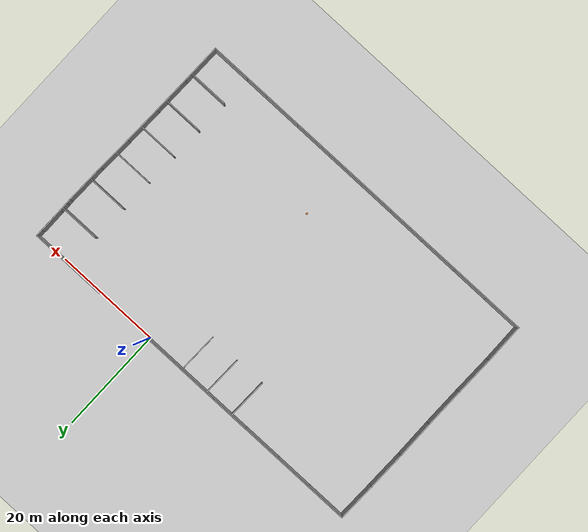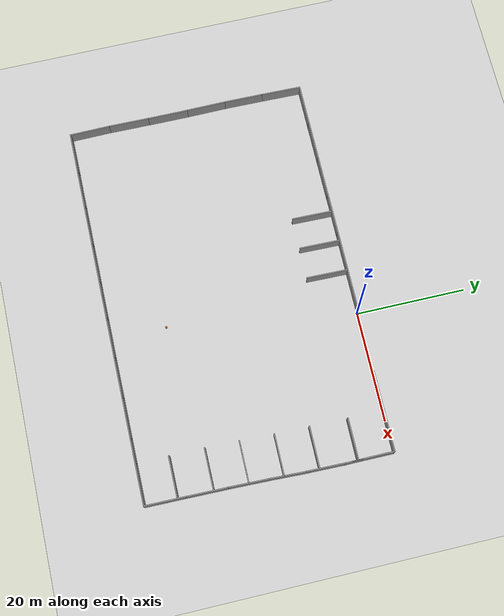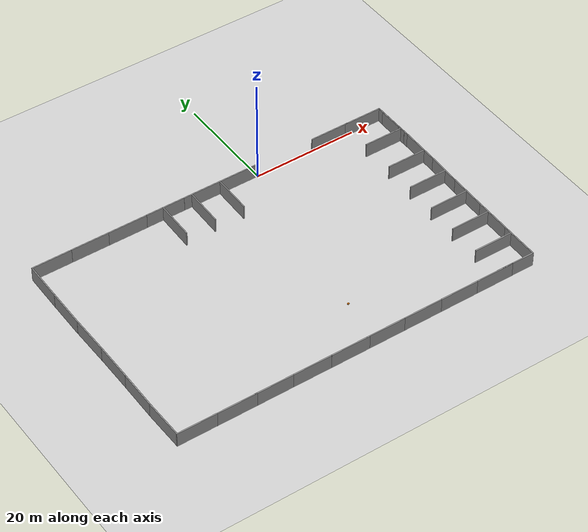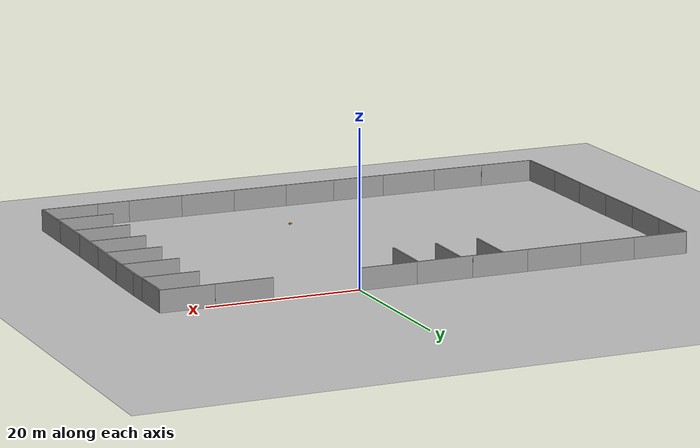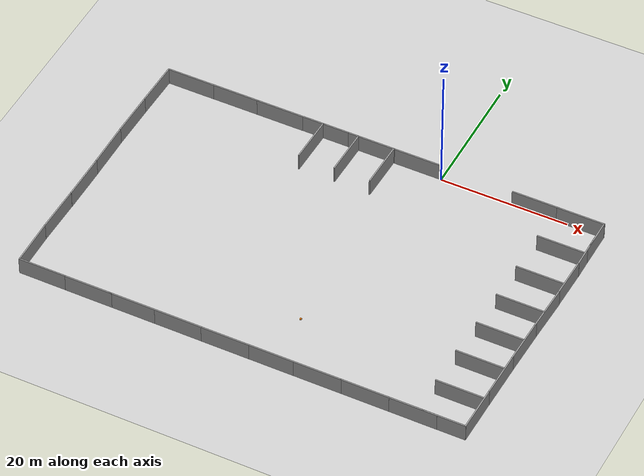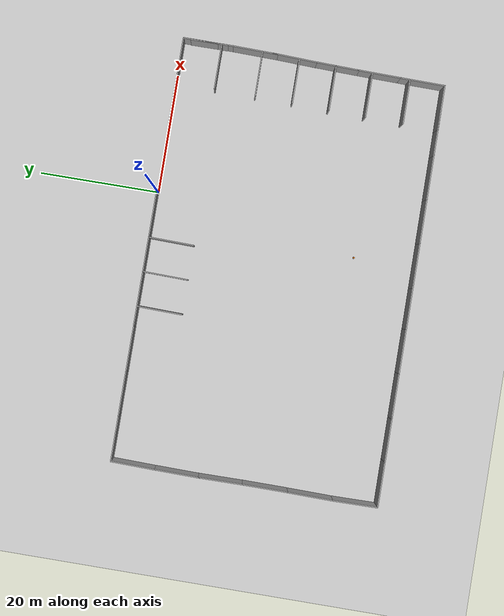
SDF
<sdf version="1.7">
 <world name="default">
  <light name="sun" type="directional">
   <pose>0 0 10 0 -0 0</pose>
   <diffuse>0.8 0.8 0.8 1</diffuse>
   <specular>0.2 0.2 0.2 1</specular>
   <attenuation>
    <range>1000</range>
    <constant>0.9</constant>
    <linear>0.01</linear>
    <quadratic>0.001</quadratic>
   </attenuation>
   <direction>-0.5 0.1 -0.9</direction>
   <spot><inner_angle>0</inner_angle><outer_angle>0</outer_angle><falloff>0</falloff></spot>
  </light>
  <model name="ground_plane">
   <static>1</static>
   <link name="link">
    <collision name="collision">
     <geometry><plane><normal>0 0 1</normal><size>100 100</size></plane></geometry>
     <surface><friction><ode><mu>100</mu><mu2>50</mu2></ode></friction></surface>
    </collision>
    <visual name="visual">
     <cast_shadows>0</cast_shadows>
     <geometry><plane><normal>0 0 1</normal><size>100 100</size></plane></geometry>
     <material>
      <script><uri>file://media/materials/scripts/gazebo.material</uri><name>Gazebo/Grey</name></script>
     </material>
    </visual>
   </link>
  </model>
  <gravity>0 0 -9.8</gravity>
  <magnetic_field>6e-06 2.3e-05 -4.2e-05</magnetic_field>
  <atmosphere type="adiabatic"/>
  <physics type="ode">
   <max_step_size>0.001</max_step_size>
   <real_time_factor>1</real_time_factor>
   <real_time_update_rate>1000</real_time_update_rate>
  </physics>
  <scene><ambient>0.4 0.4 0.4 1</ambient><background>0.7 0.7 0.7 1</background><shadows>1</shadows></scene>
  <audio><device>default</device></audio>
  <spherical_coordinates>
   <surface_model>EARTH_WGS84</surface_model>
   <latitude_deg>0</latitude_deg>
   <longitude_deg>0</longitude_deg>
   <elevation>0</elevation>
   <heading_deg>0</heading_deg>
  </spherical_coordinates>
  <model name="grey_wall">
   <static>1</static>
   <link name="link">
    <pose>0 0 1.4 0 -0 0</pose>
    <collision name="collision"><geometry><box><size>7.5 0.2 2.8</size></box></geometry></collision>
    <visual name="visual">
     <cast_shadows>0</cast_shadows>
     <geometry><box><size>7.5 0.2 2.8</size></box></geometry>
     <material>
      <script>
       <uri>model://grey_wall/materials/scripts</uri>
       <uri>model://grey_wall/materials/textures</uri>
       <name>vrc/grey_wall</name>
      </script>
     </material>
    </visual>
   </link>
   <pose>15.0322 -0.046799 0 0 -0 0</pose>
  </model>
  <model name="grey_wall_0">
   <static>1</static>
   <link name="link">
    <pose>0 0 1.4 0 -0 0</pose>
    <collision name="collision"><geometry><box><size>7.5 0.2 2.8</size></box></geometry></collision>
    <visual name="visual">
     <cast_shadows>0</cast_shadows>
     <geometry><box><size>7.5 0.2 2.8</size></box></geometry>
     <material>
      <script>
       <uri>model://grey_wall/materials/scripts</uri>
       <uri>model://grey_wall/materials/textures</uri>
       <name>vrc/grey_wall</name>
      </script>
     </material>
    </visual>
   </link>
   <pose>22.1133 -0.054691 0 0 -0 0</pose>
  </model>
  <model name="grey_wall_1">
   <static>1</static>
   <link name="link">
    <pose>0 0 1.4 0 -0 0</pose>
    <collision name="collision"><geometry><box><size>7.5 0.2 2.8</size></box></geometry></collision>
    <visual name="visual">
     <cast_shadows>0</cast_shadows>
     <geometry><box><size>7.5 0.2 2.8</size></box></geometry>
     <material>
      <script>
       <uri>model://grey_wall/materials/scripts</uri>
       <uri>model://grey_wall/materials/textures</uri>
       <name>vrc/grey_wall</name>
      </script>
     </material>
    </visual>
   </link>
   <pose>-3.81044 0.066326 0 0 -0 0</pose>
  </model>
  <model name="grey_wall_2">
   <static>1</static>
   <link name="link">
    <pose>0 0 1.4 0 -0 0</pose>
    <collision name="collision"><geometry><box><size>7.5 0.2 2.8</size></box></geometry></collision>
    <visual name="visual">
     <cast_shadows>0</cast_shadows>
     <geometry><box><size>7.5 0.2 2.8</size></box></geometry>
     <material>
      <script>
       <uri>model://grey_wall/materials/scripts</uri>
       <uri>model://grey_wall/materials/textures</uri>
       <name>vrc/grey_wall</name>
      </script>
     </material>
    </visual>
   </link>
   <pose>-11.3103 0.075244 0 0 -0 0</pose>
  </model>
  <model name="grey_wall_3">
   <static>1</static>
   <link name="link">
    <pose>0 0 1.4 0 -0 0</pose>
    <collision name="collision"><geometry><box><size>7.5 0.2 2.8</size></box></geometry></collision>
    <visual name="visual">
     <cast_shadows>0</cast_shadows>
     <geometry><box><size>7.5 0.2 2.8</size></box></geometry>
     <material>
      <script>
       <uri>model://grey_wall/materials/scripts</uri>
       <uri>model://grey_wall/materials/textures</uri>
       <name>vrc/grey_wall</name>
      </script>
     </material>
    </visual>
   </link>
   <pose>-18.8122 0.079753 0 0 -0 0</pose>
  </model>
  <model name="grey_wall_4">
   <static>1</static>
   <link name="link">
    <pose>0 0 1.4 0 -0 0</pose>
    <collision name="collision"><geometry><box><size>7.5 0.2 2.8</size></box></geometry></collision>
    <visual name="visual">
     <cast_shadows>0</cast_shadows>
     <geometry><box><size>7.5 0.2 2.8</size></box></geometry>
     <material>
      <script>
       <uri>model://grey_wall/materials/scripts</uri>
       <uri>model://grey_wall/materials/textures</uri>
       <name>vrc/grey_wall</name>
      </script>
     </material>
    </visual>
   </link>
   <pose>-26.2991 0.06013 0 0 -0 0</pose>
  </model>
  <model name="grey_wall_5">
   <static>1</static>
   <link name="link">
    <pose>0 0 1.4 0 -0 0</pose>
    <collision name="collision"><geometry><box><size>7.5 0.2 2.8</size></box></geometry></collision>
    <visual name="visual">
     <cast_shadows>0</cast_shadows>
     <geometry><box><size>7.5 0.2 2.8</size></box></geometry>
     <material>
      <script>
       <uri>model://grey_wall/materials/scripts</uri>
       <uri>model://grey_wall/materials/textures</uri>
       <name>vrc/grey_wall</name>
      </script>
     </material>
    </visual>
   </link>
   <pose>-33.6204 0.060884 0 0 -0 0</pose>
  </model>
  <model name="grey_wall_6">
   <static>1</static>
   <link name="link">
    <pose>0 0 1.4 0 -0 0</pose>
    <collision name="collision"><geometry><box><size>7.5 0.2 2.8</size></box></geometry></collision>
    <visual name="visual">
     <cast_shadows>0</cast_shadows>
     <geometry><box><size>7.5 0.2 2.8</size></box></geometry>
     <material>
      <script>
       <uri>model://grey_wall/materials/scripts</uri>
       <uri>model://grey_wall/materials/textures</uri>
       <name>vrc/grey_wall</name>
      </script>
     </material>
    </visual>
   </link>
   <pose>-40.9914 0.052124 0 0 -0 0</pose>
  </model>
  <model name="grey_wall_7">
   <static>1</static>
   <link name="link">
    <pose>0 0 1.4 0 -0 0</pose>
    <collision name="collision"><geometry><box><size>7.5 0.2 2.8</size></box></geometry></collision>
    <visual name="visual">
     <cast_shadows>0</cast_shadows>
     <geometry><box><size>7.5 0.2 2.8</size></box></geometry>
     <material>
      <script>
       <uri>model://grey_wall/materials/scripts</uri>
       <uri>model://grey_wall/materials/textures</uri>
       <name>vrc/grey_wall</name>
      </script>
     </material>
    </visual>
   </link>
   <pose>-44.9496 -10.9203 0 0 0 -1.58488</pose>
  </model>
  <model name="grey_wall_8">
   <static>1</static>
   <link name="link">
    <pose>0 0 1.4 0 -0 0</pose>
    <collision name="collision"><geometry><box><size>7.5 0.2 2.8</size></box></geometry></collision>
    <visual name="visual">
     <cast_shadows>0</cast_shadows>
     <geometry><box><size>7.5 0.2 2.8</size></box></geometry>
     <material>
      <script>
       <uri>model://grey_wall/materials/scripts</uri>
       <uri>model://grey_wall/materials/textures</uri>
       <name>vrc/grey_wall</name>
      </script>
     </material>
    </visual>
   </link>
   <pose>-44.9397 -25.3907 0 0 0 -1.57569</pose>
  </model>
  <model name="grey_wall_9">
   <static>1</static>
   <link name="link">
    <pose>0 0 1.4 0 -0 0</pose>
    <collision name="collision"><geometry><box><size>7.5 0.2 2.8</size></box></geometry></collision>
    <visual name="visual">
     <cast_shadows>0</cast_shadows>
     <geometry><box><size>7.5 0.2 2.8</size></box></geometry>
     <material>
      <script>
       <uri>model://grey_wall/materials/scripts</uri>
       <uri>model://grey_wall/materials/textures</uri>
       <name>vrc/grey_wall</name>
      </script>
     </material>
    </visual>
   </link>
   <pose>-44.8309 -3.63413 0 0 0 -1.59164</pose>
  </model>
  <model name="grey_wall_10">
   <static>1</static>
   <link name="link">
    <pose>0 0 1.4 0 -0 0</pose>
    <collision name="collision"><geometry><box><size>7.5 0.2 2.8</size></box></geometry></collision>
    <visual name="visual">
     <cast_shadows>0</cast_shadows>
     <geometry><box><size>7.5 0.2 2.8</size></box></geometry>
     <material>
      <script>
       <uri>model://grey_wall/materials/scripts</uri>
       <uri>model://grey_wall/materials/textures</uri>
       <name>vrc/grey_wall</name>
      </script>
     </material>
    </visual>
   </link>
   <pose>-44.96 -18.1413 0 0 0 -1.56302</pose>
  </model>
  <model name="grey_wall_11">
   <static>1</static>
   <link name="link">
    <pose>0 0 1.4 0 -0 0</pose>
    <collision name="collision"><geometry><box><size>7.5 0.2 2.8</size></box></geometry></collision>
    <visual name="visual">
     <cast_shadows>0</cast_shadows>
     <geometry><box><size>7.5 0.2 2.8</size></box></geometry>
     <material>
      <script>
       <uri>model://grey_wall/materials/scripts</uri>
       <uri>model://grey_wall/materials/textures</uri>
       <name>vrc/grey_wall</name>
      </script>
     </material>
    </visual>
   </link>
   <pose>-45.0177 -32.7999 0 0 -0 1.55716</pose>
  </model>
  <model name="grey_wall_12">
   <static>1</static>
   <link name="link">
    <pose>0 0 1.4 0 -0 0</pose>
    <collision name="collision"><geometry><box><size>7.5 0.2 2.8</size></box></geometry></collision>
    <visual name="visual">
     <cast_shadows>0</cast_shadows>
     <geometry><box><size>7.5 0.2 2.8</size></box></geometry>
     <material>
      <script>
       <uri>model://grey_wall/materials/scripts</uri>
       <uri>model://grey_wall/materials/textures</uri>
       <name>vrc/grey_wall</name>
      </script>
     </material>
    </visual>
   </link>
   <pose>-45.0243 -40.0833 0 0 0 -1.5578</pose>
  </model>
  <model name="grey_wall_13">
   <static>1</static>
   <link name="link">
    <pose>0 0 1.4 0 -0 0</pose>
    <collision name="collision"><geometry><box><size>7.5 0.2 2.8</size></box></geometry></collision>
    <visual name="visual">
     <cast_shadows>0</cast_shadows>
     <geometry><box><size>7.5 0.2 2.8</size></box></geometry>
     <material>
      <script>
       <uri>model://grey_wall/materials/scripts</uri>
       <uri>model://grey_wall/materials/textures</uri>
       <name>vrc/grey_wall</name>
      </script>
     </material>
    </visual>
   </link>
   <pose>-41.3239 -43.9219 0 0 -0 0</pose>
  </model>
  <model name="grey_wall_14">
   <static>1</static>
   <link name="link">
    <pose>0 0 1.4 0 -0 0</pose>
    <collision name="collision"><geometry><box><size>7.5 0.2 2.8</size></box></geometry></collision>
    <visual name="visual">
     <cast_shadows>0</cast_shadows>
     <geometry><box><size>7.5 0.2 2.8</size></box></geometry>
     <material>
      <script>
       <uri>model://grey_wall/materials/scripts</uri>
       <uri>model://grey_wall/materials/textures</uri>
       <name>vrc/grey_wall</name>
      </script>
     </material>
    </visual>
   </link>
   <pose>-33.8425 -43.9356 0 0 -0 0</pose>
  </model>
  <model name="grey_wall_15">
   <static>1</static>
   <link name="link">
    <pose>0 0 1.4 0 -0 0</pose>
    <collision name="collision"><geometry><box><size>7.5 0.2 2.8</size></box></geometry></collision>
    <visual name="visual">
     <cast_shadows>0</cast_shadows>
     <geometry><box><size>7.5 0.2 2.8</size></box></geometry>
     <material>
      <script>
       <uri>model://grey_wall/materials/scripts</uri>
       <uri>model://grey_wall/materials/textures</uri>
       <name>vrc/grey_wall</name>
      </script>
     </material>
    </visual>
   </link>
   <pose>-26.7796 -43.9342 0 0 -0 0</pose>
  </model>
  <model name="grey_wall_16">
   <static>1</static>
   <link name="link">
    <pose>0 0 1.4 0 -0 0</pose>
    <collision name="collision"><geometry><box><size>7.5 0.2 2.8</size></box></geometry></collision>
    <visual name="visual">
     <cast_shadows>0</cast_shadows>
     <geometry><box><size>7.5 0.2 2.8</size></box></geometry>
     <material>
      <script>
       <uri>model://grey_wall/materials/scripts</uri>
       <uri>model://grey_wall/materials/textures</uri>
       <name>vrc/grey_wall</name>
      </script>
     </material>
    </visual>
   </link>
   <pose>-19.505 -43.9367 0 0 -0 0</pose>
  </model>
  <model name="grey_wall_17">
   <static>1</static>
   <link name="link">
    <pose>0 0 1.4 0 -0 0</pose>
    <collision name="collision"><geometry><box><size>7.5 0.2 2.8</size></box></geometry></collision>
    <visual name="visual">
     <cast_shadows>0</cast_shadows>
     <geometry><box><size>7.5 0.2 2.8</size></box></geometry>
     <material>
      <script>
       <uri>model://grey_wall/materials/scripts</uri>
       <uri>model://grey_wall/materials/textures</uri>
       <name>vrc/grey_wall</name>
      </script>
     </material>
    </visual>
   </link>
   <pose>-12.133 -43.9467 0 0 -0 0</pose>
  </model>
  <model name="grey_wall_18">
   <static>1</static>
   <link name="link">
    <pose>0 0 1.4 0 -0 0</pose>
    <collision name="collision"><geometry><box><size>7.5 0.2 2.8</size></box></geometry></collision>
    <visual name="visual">
     <cast_shadows>0</cast_shadows>
     <geometry><box><size>7.5 0.2 2.8</size></box></geometry>
     <material>
      <script>
       <uri>model://grey_wall/materials/scripts</uri>
       <uri>model://grey_wall/materials/textures</uri>
       <name>vrc/grey_wall</name>
      </script>
     </material>
    </visual>
   </link>
   <pose>-5.17967 -43.942 0 0 -0 0</pose>
  </model>
  <model name="grey_wall_19">
   <static>1</static>
   <link name="link">
    <pose>0 0 1.4 0 -0 0</pose>
    <collision name="collision"><geometry><box><size>7.5 0.2 2.8</size></box></geometry></collision>
    <visual name="visual">
     <cast_shadows>0</cast_shadows>
     <geometry><box><size>7.5 0.2 2.8</size></box></geometry>
     <material>
      <script>
       <uri>model://grey_wall/materials/scripts</uri>
       <uri>model://grey_wall/materials/textures</uri>
       <name>vrc/grey_wall</name>
      </script>
     </material>
    </visual>
   </link>
   <pose>2.24043 -43.9352 0 0 -0 0</pose>
  </model>
  <model name="grey_wall_20">
   <static>1</static>
   <link name="link">
    <pose>0 0 1.4 0 -0 0</pose>
    <collision name="collision"><geometry><box><size>7.5 0.2 2.8</size></box></geometry></collision>
    <visual name="visual">
     <cast_shadows>0</cast_shadows>
     <geometry><box><size>7.5 0.2 2.8</size></box></geometry>
     <material>
      <script>
       <uri>model://grey_wall/materials/scripts</uri>
       <uri>model://grey_wall/materials/textures</uri>
       <name>vrc/grey_wall</name>
      </script>
     </material>
    </visual>
   </link>
   <pose>9.60015 -43.9275 0 0 -0 0</pose>
  </model>
  <model name="grey_wall_21">
   <static>1</static>
   <link name="link">
    <pose>0 0 1.4 0 -0 0</pose>
    <collision name="collision"><geometry><box><size>7.5 0.2 2.8</size></box></geometry></collision>
    <visual name="visual">
     <cast_shadows>0</cast_shadows>
     <geometry><box><size>7.5 0.2 2.8</size></box></geometry>
     <material>
      <script>
       <uri>model://grey_wall/materials/scripts</uri>
       <uri>model://grey_wall/materials/textures</uri>
       <name>vrc/grey_wall</name>
      </script>
     </material>
    </visual>
   </link>
   <pose>16.9142 -43.923 0 0 -0 0</pose>
  </model>
  <model name="grey_wall_22">
   <static>1</static>
   <link name="link">
    <pose>0 0 1.4 0 -0 0</pose>
    <collision name="collision"><geometry><box><size>7.5 0.2 2.8</size></box></geometry></collision>
    <visual name="visual">
     <cast_shadows>0</cast_shadows>
     <geometry><box><size>7.5 0.2 2.8</size></box></geometry>
     <material>
      <script>
       <uri>model://grey_wall/materials/scripts</uri>
       <uri>model://grey_wall/materials/textures</uri>
       <name>vrc/grey_wall</name>
      </script>
     </material>
    </visual>
   </link>
   <pose>21.2873 -43.9116 0 0 -0 0</pose>
  </model>
  <model name="grey_wall_23">
   <static>1</static>
   <link name="link">
    <pose>0 0 1.4 0 -0 0</pose>
    <collision name="collision"><geometry><box><size>7.5 0.2 2.8</size></box></geometry></collision>
    <visual name="visual">
     <cast_shadows>0</cast_shadows>
     <geometry><box><size>7.5 0.2 2.8</size></box></geometry>
     <material>
      <script>
       <uri>model://grey_wall/materials/scripts</uri>
       <uri>model://grey_wall/materials/textures</uri>
       <name>vrc/grey_wall</name>
      </script>
     </material>
    </visual>
   </link>
   <pose>25.0077 -40.2521 0 0 0 -1.58292</pose>
  </model>
  <model name="grey_wall_24">
   <static>1</static>
   <link name="link">
    <pose>0 0 1.4 0 -0 0</pose>
    <collision name="collision"><geometry><box><size>7.5 0.2 2.8</size></box></geometry></collision>
    <visual name="visual">
     <cast_shadows>0</cast_shadows>
     <geometry><box><size>7.5 0.2 2.8</size></box></geometry>
     <material>
      <script>
       <uri>model://grey_wall/materials/scripts</uri>
       <uri>model://grey_wall/materials/textures</uri>
       <name>vrc/grey_wall</name>
      </script>
     </material>
    </visual>
   </link>
   <pose>25.1189 -32.9921 0 0 0 -1.5876</pose>
  </model>
  <model name="grey_wall_25">
   <static>1</static>
   <link name="link">
    <pose>0 0 1.4 0 -0 0</pose>
    <collision name="collision"><geometry><box><size>7.5 0.2 2.8</size></box></geometry></collision>
    <visual name="visual">
     <cast_shadows>0</cast_shadows>
     <geometry><box><size>7.5 0.2 2.8</size></box></geometry>
     <material>
      <script>
       <uri>model://grey_wall/materials/scripts</uri>
       <uri>model://grey_wall/materials/textures</uri>
       <name>vrc/grey_wall</name>
      </script>
     </material>
    </visual>
   </link>
   <pose>25.4883 -18.7407 0 0 0 -1.61009</pose>
  </model>
  <model name="grey_wall_26">
   <static>1</static>
   <link name="link">
    <pose>0 0 1.4 0 -0 0</pose>
    <collision name="collision"><geometry><box><size>7.5 0.2 2.8</size></box></geometry></collision>
    <visual name="visual">
     <cast_shadows>0</cast_shadows>
     <geometry><box><size>7.5 0.2 2.8</size></box></geometry>
     <material>
      <script>
       <uri>model://grey_wall/materials/scripts</uri>
       <uri>model://grey_wall/materials/textures</uri>
       <name>vrc/grey_wall</name>
      </script>
     </material>
    </visual>
   </link>
   <pose>25.6675 -12.1685 0 0 0 -1.59098</pose>
  </model>
  <model name="grey_wall_27">
   <static>1</static>
   <link name="link">
    <pose>0 0 1.4 0 -0 0</pose>
    <collision name="collision"><geometry><box><size>7.5 0.2 2.8</size></box></geometry></collision>
    <visual name="visual">
     <cast_shadows>0</cast_shadows>
     <geometry><box><size>7.5 0.2 2.8</size></box></geometry>
     <material>
      <script>
       <uri>model://grey_wall/materials/scripts</uri>
       <uri>model://grey_wall/materials/textures</uri>
       <name>vrc/grey_wall</name>
      </script>
     </material>
    </visual>
   </link>
   <pose>25.2654 -25.8422 -0 0 0 -1.59708</pose>
  </model>
  <model name="grey_wall_28">
   <static>1</static>
   <link name="link">
    <pose>0 0 1.4 0 -0 0</pose>
    <collision name="collision"><geometry><box><size>7.5 0.2 2.8</size></box></geometry></collision>
    <visual name="visual">
     <cast_shadows>0</cast_shadows>
     <geometry><box><size>7.5 0.2 2.8</size></box></geometry>
     <material>
      <script>
       <uri>model://grey_wall/materials/scripts</uri>
       <uri>model://grey_wall/materials/textures</uri>
       <name>vrc/grey_wall</name>
      </script>
     </material>
    </visual>
   </link>
   <pose>25.7264 -5.00568 0 0 0 -1.56465</pose>
  </model>
  <model name="grey_wall_29">
   <static>1</static>
   <link name="link">
    <pose>0 0 1.4 0 -0 0</pose>
    <collision name="collision"><geometry><box><size>7.5 0.2 2.8</size></box></geometry></collision>
    <visual name="visual">
     <cast_shadows>0</cast_shadows>
     <geometry><box><size>7.5 0.2 2.8</size></box></geometry>
     <material>
      <script>
       <uri>model://grey_wall/materials/scripts</uri>
       <uri>model://grey_wall/materials/textures</uri>
       <name>vrc/grey_wall</name>
      </script>
     </material>
    </visual>
   </link>
   <pose>25.7392 -3.78871 0 0 0 -1.5746</pose>
  </model>
  <model name="grey_wall_0_clone">
   <static>1</static>
   <link name="link">
    <pose>0 0 1.4 0 -0 0</pose>
    <collision name="collision"><geometry><box><size>7.5 0.2 2.8</size></box></geometry></collision>
    <visual name="visual">
     <cast_shadows>0</cast_shadows>
     <geometry><box><size>7.5 0.2 2.8</size></box></geometry>
     <material>
      <script>
       <uri>model://grey_wall/materials/scripts</uri>
       <uri>model://grey_wall/materials/textures</uri>
       <name>vrc/grey_wall</name>
      </script>
     </material>
    </visual>
   </link>
   <pose>21.9872 -6.49149 0 0 -0 0</pose>
  </model>
  <model name="grey_wall_0_clone_0">
   <static>1</static>
   <link name="link">
    <pose>0 0 1.4 0 -0 0</pose>
    <collision name="collision"><geometry><box><size>7.5 0.2 2.8</size></box></geometry></collision>
    <visual name="visual">
     <cast_shadows>0</cast_shadows>
     <geometry><box><size>7.5 0.2 2.8</size></box></geometry>
     <material>
      <script>
       <uri>model://grey_wall/materials/scripts</uri>
       <uri>model://grey_wall/materials/textures</uri>
       <name>vrc/grey_wall</name>
      </script>
     </material>
    </visual>
   </link>
   <pose>21.8589 -13.3275 0 0 -0 0</pose>
  </model>
  <model name="grey_wall_0_clone_1">
   <static>1</static>
   <link name="link">
    <pose>0 0 1.4 0 -0 0</pose>
    <collision name="collision"><geometry><box><size>7.5 0.2 2.8</size></box></geometry></collision>
    <visual name="visual">
     <cast_shadows>0</cast_shadows>
     <geometry><box><size>7.5 0.2 2.8</size></box></geometry>
     <material>
      <script>
       <uri>model://grey_wall/materials/scripts</uri>
       <uri>model://grey_wall/materials/textures</uri>
       <name>vrc/grey_wall</name>
      </script>
     </material>
    </visual>
   </link>
   <pose>21.7444 -19.5518 0 0 -0 0</pose>
  </model>
  <model name="grey_wall_0_clone_2">
   <static>1</static>
   <link name="link">
    <pose>0 0 1.4 0 -0 0</pose>
    <collision name="collision"><geometry><box><size>7.5 0.2 2.8</size></box></geometry></collision>
    <visual name="visual">
     <cast_shadows>0</cast_shadows>
     <geometry><box><size>7.5 0.2 2.8</size></box></geometry>
     <material>
      <script>
       <uri>model://grey_wall/materials/scripts</uri>
       <uri>model://grey_wall/materials/textures</uri>
       <name>vrc/grey_wall</name>
      </script>
     </material>
    </visual>
   </link>
   <pose>21.5344 -25.7051 0 0 -0 0</pose>
  </model>
  <model name="grey_wall_0_clone_3">
   <static>1</static>
   <link name="link">
    <pose>0 0 1.4 0 -0 0</pose>
    <collision name="collision"><geometry><box><size>7.5 0.2 2.8</size></box></geometry></collision>
    <visual name="visual">
     <cast_shadows>0</cast_shadows>
     <geometry><box><size>7.5 0.2 2.8</size></box></geometry>
     <material>
      <script>
       <uri>model://grey_wall/materials/scripts</uri>
       <uri>model://grey_wall/materials/textures</uri>
       <name>vrc/grey_wall</name>
      </script>
     </material>
    </visual>
   </link>
   <pose>21.3631 -31.8085 0 0 -0 0</pose>
  </model>
  <model name="grey_wall_0_clone_4">
   <static>1</static>
   <link name="link">
    <pose>0 0 1.4 0 -0 0</pose>
    <collision name="collision"><geometry><box><size>7.5 0.2 2.8</size></box></geometry></collision>
    <visual name="visual">
     <cast_shadows>0</cast_shadows>
     <geometry><box><size>7.5 0.2 2.8</size></box></geometry>
     <material>
      <script>
       <uri>model://grey_wall/materials/scripts</uri>
       <uri>model://grey_wall/materials/textures</uri>
       <name>vrc/grey_wall</name>
      </script>
     </material>
    </visual>
   </link>
   <pose>21.2929 -38.0926 0 0 -0 0</pose>
  </model>
  <model name="grey_wall_9_clone">
   <static>1</static>
   <link name="link">
    <pose>0 0 1.4 0 -0 0</pose>
    <collision name="collision"><geometry><box><size>7.5 0.2 2.8</size></box></geometry></collision>
    <visual name="visual">
     <cast_shadows>0</cast_shadows>
     <geometry><box><size>7.5 0.2 2.8</size></box></geometry>
     <material>
      <script>
       <uri>model://grey_wall/materials/scripts</uri>
       <uri>model://grey_wall/materials/textures</uri>
       <name>vrc/grey_wall</name>
      </script>
     </material>
    </visual>
   </link>
   <pose>-7.82082 -3.70591 0 0 0 -1.59164</pose>
  </model>
  <model name="grey_wall_9_clone_0">
   <static>1</static>
   <link name="link">
    <pose>0 0 1.4 0 -0 0</pose>
    <collision name="collision"><geometry><box><size>7.5 0.2 2.8</size></box></geometry></collision>
    <visual name="visual">
     <cast_shadows>0</cast_shadows>
     <geometry><box><size>7.5 0.2 2.8</size></box></geometry>
     <material>
      <script>
       <uri>model://grey_wall/materials/scripts</uri>
       <uri>model://grey_wall/materials/textures</uri>
       <name>vrc/grey_wall</name>
      </script>
     </material>
    </visual>
   </link>
   <pose>-13.5441 -3.6438 0 0 0 -1.59164</pose>
  </model>
  <model name="grey_wall_9_clone_1">
   <static>1</static>
   <link name="link">
    <pose>0 0 1.4 0 -0 0</pose>
    <collision name="collision"><geometry><box><size>7.5 0.2 2.8</size></box></geometry></collision>
    <visual name="visual">
     <cast_shadows>0</cast_shadows>
     <geometry><box><size>7.5 0.2 2.8</size></box></geometry>
     <material>
      <script>
       <uri>model://grey_wall/materials/scripts</uri>
       <uri>model://grey_wall/materials/textures</uri>
       <name>vrc/grey_wall</name>
      </script>
     </material>
    </visual>
   </link>
   <pose>-19.302 -3.68215 0 0 0 -1.59164</pose>
  </model>
  <model name="my_bot">
   <link name="base_link">
    <inertial>
     <pose>0.055714 0 0.078571 0 -0 0</pose>
     <mass>0.7</mass>
     <inertia>
      <ixx>0.0064169</ixx>
      <ixy>0</ixy>
      <ixz>0.00118929</ixz>
      <iyy>0.00745405</iyy>
      <iyz>0</iyz>
      <izz>0.00876214</izz>
     </inertia>
    </inertial>
    <collision name="base_link_fixed_joint_lump__chassis_collision">
     <pose>0.05 0 0.075 0 -0 0</pose>
     <geometry><box><size>0.3 0.3 0.15</size></box></geometry>
    </collision>
    <collision name="base_link_fixed_joint_lump__caster_wheel_collision_1">
     <pose>0.14 0 0 0 -0 0</pose>
     <geometry><sphere><radius>0.05</radius></sphere></geometry>
     <surface><friction><ode><mu>0.001</mu><mu2>0.001</mu2></ode></friction></surface>
    </collision>
    <collision name="base_link_fixed_joint_lump__laser_frame_collision_2">
     <pose>0 0 0.175 0 -0 0</pose>
     <geometry><cylinder><length>0.04</length><radius>0.05</radius></cylinder></geometry>
    </collision>
    <visual name="base_link_fixed_joint_lump__chassis_visual">
     <pose>0.05 0 0.075 0 -0 0</pose>
     <geometry><box><size>0.3 0.3 0.15</size></box></geometry>
     <material>
      <script><name>Gazebo/Orange</name><uri>file://media/materials/scripts/gazebo.material</uri></script>
     </material>
    </visual>
    <visual name="base_link_fixed_joint_lump__camera_link_visual_1">
     <pose>0.205 0 0.08 0 -0 0</pose>
     <geometry><box><size>0.01 0.03 0.03</size></box></geometry>
     <material>
      <script><name>Gazebo/Red</name><uri>file://media/materials/scripts/gazebo.material</uri></script>
     </material>
    </visual>
    <visual name="base_link_fixed_joint_lump__caster_wheel_visual_2">
     <pose>0.14 0 0 0 -0 0</pose>
     <geometry><sphere><radius>0.05</radius></sphere></geometry>
     <material>
      <script><name>Gazebo/White</name><uri>file://media/materials/scripts/gazebo.material</uri></script>
     </material>
    </visual>
    <visual name="base_link_fixed_joint_lump__laser_frame_visual_3">
     <pose>0 0 0.175 0 -0 0</pose>
     <geometry><cylinder><length>0.04</length><radius>0.05</radius></cylinder></geometry>
     <material>
      <script><name>Gazebo/Red</name><uri>file://media/materials/scripts/gazebo.material</uri></script>
     </material>
    </visual>
    <sensor name="camera" type="camera">
     <visualize>1</visualize>
     <update_rate>10</update_rate>
     <camera>
      <horizontal_fov>1.089</horizontal_fov>
      <image><format>R8G8B8</format><width>640</width><height>480</height></image>
      <clip><near>0.05</near><far>15</far></clip>
     </camera>
     <plugin name="camera_controller" filename="libgazebo_ros_camera.so">
      <frame_name>camera_link_optical</frame_name>
     </plugin>
     <pose>0.205 0 0.08 0 -0 0</pose>
    </sensor>
    <sensor name="laser" type="ray">
     <visualize>1</visualize>
     <update_rate>10</update_rate>
     <ray>
      <scan>
       <horizontal>
        <samples>360</samples>
        <min_angle>-3.14</min_angle>
        <max_angle>3.14</max_angle>
        <resolution>1</resolution>
       </horizontal>
       <vertical><samples>1</samples><min_angle>0</min_angle><max_angle>0</max_angle></vertical>
      </scan>
      <range><min>0.3</min><max>12</max></range>
     </ray>
     <plugin name="laser_controller" filename="libgazebo_ros_ray_sensor.so">
      <ros><argument>~/out:=scan</argument></ros>
      <output_type>sensor_msgs/LaserScan</output_type>
      <frame_name>laser_frame</frame_name>
     </plugin>
     <pose>0 0 0.175 0 -0 0</pose>
    </sensor>
   </link>
   <joint name="left_wheel_joint" type="revolute">
    <pose relative_to="base_link">0 0.175 0 -1.5708 0 0</pose>
    <parent>base_link</parent>
    <child>left_wheel</child>
    <axis>
     <xyz>0 0 1</xyz>
     <limit><lower>-1e+16</lower><upper>1e+16</upper></limit>
     <dynamics><spring_reference>0</spring_reference><spring_stiffness>0</spring_stiffness></dynamics>
    </axis>
   </joint>
   <link name="left_wheel">
    <pose relative_to="left_wheel_joint">0 0 0 0 -0 0</pose>
    <inertial>
     <mass>0.1</mass>
     <inertia>
      <ixx>7.58333e-05</ixx>
      <ixy>0</ixy>
      <ixz>0</ixz>
      <iyy>7.58333e-05</iyy>
      <iyz>0</iyz>
      <izz>0.000125</izz>
     </inertia>
    </inertial>
    <collision name="left_wheel_collision">
     <geometry><cylinder><length>0.04</length><radius>0.05</radius></cylinder></geometry>
    </collision>
    <visual name="left_wheel_visual">
     <geometry><cylinder><length>0.04</length><radius>0.05</radius></cylinder></geometry>
     <material>
      <script><name>Gazebo/Blue</name><uri>file://media/materials/scripts/gazebo.material</uri></script>
     </material>
    </visual>
   </link>
   <joint name="right_wheel_joint" type="revolute">
    <pose relative_to="base_link">0 -0.175 0 1.5708 -0 0</pose>
    <parent>base_link</parent>
    <child>right_wheel</child>
    <axis>
     <xyz>0 0 -1</xyz>
     <limit><lower>-1e+16</lower><upper>1e+16</upper></limit>
     <dynamics><spring_reference>0</spring_reference><spring_stiffness>0</spring_stiffness></dynamics>
    </axis>
   </joint>
   <link name="right_wheel">
    <pose relative_to="right_wheel_joint">0 0 0 0 -0 0</pose>
    <inertial>
     <mass>0.1</mass>
     <inertia>
      <ixx>7.58333e-05</ixx>
      <ixy>0</ixy>
      <ixz>0</ixz>
      <iyy>7.58333e-05</iyy>
      <iyz>0</iyz>
      <izz>0.000125</izz>
     </inertia>
    </inertial>
    <collision name="right_wheel_collision">
     <geometry><cylinder><length>0.04</length><radius>0.05</radius></cylinder></geometry>
    </collision>
    <visual name="right_wheel_visual">
     <geometry><cylinder><length>0.04</length><radius>0.05</radius></cylinder></geometry>
     <material>
      <script><name>Gazebo/Blue</name><uri>file://media/materials/scripts/gazebo.material</uri></script>
     </material>
    </visual>
   </link>
   <static>0</static>
   <plugin name="diff_drive" filename="libgazebo_ros_diff_drive.so">
    <left_joint>left_wheel_joint</left_joint>
    <right_joint>right_wheel_joint</right_joint>
    <wheel_separation>0.297</wheel_separation>
    <wheel_diameter>0.066</wheel_diameter>
    <max_wheel_torque>200</max_wheel_torque>
    <max_wheel_acceleration>10.0</max_wheel_acceleration>
    <odometry_frame>odom</odometry_frame>
    <robot_base_frame>base_link</robot_base_frame>
    <publish_odom>1</publish_odom>
    <publish_odom_tf>1</publish_odom_tf>
    <publish_wheel_tf>1</publish_wheel_tf>
   </plugin>
   <pose>-5.38197 -33.9833 0.050001 3e-06 5e-06 -1.3445</pose>
  </model>
 </world>
</sdf>
